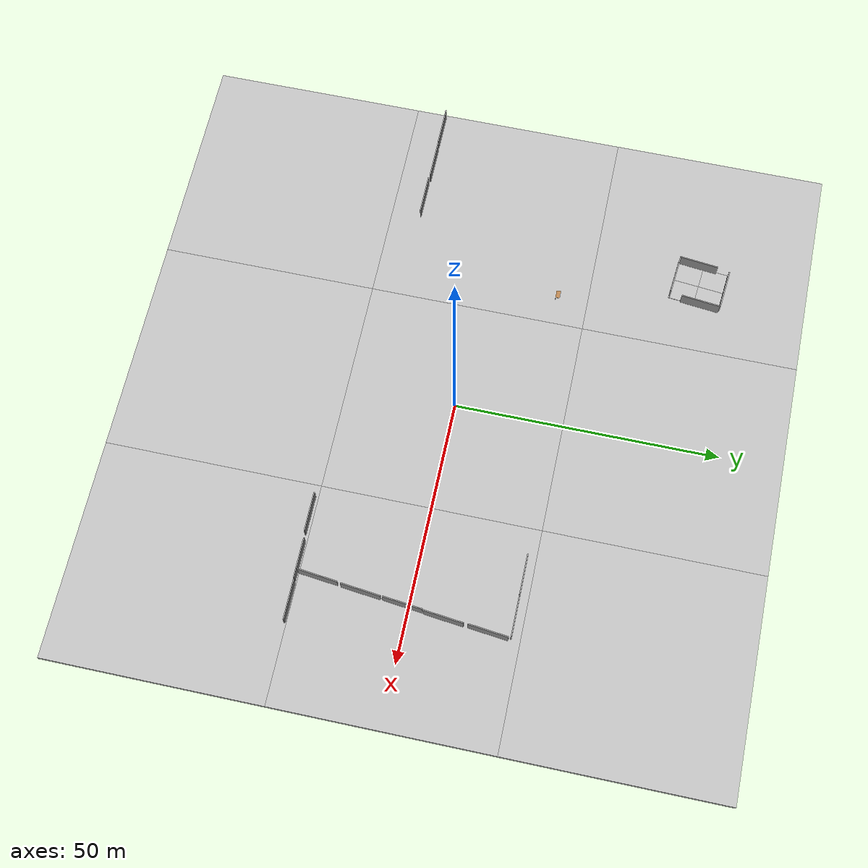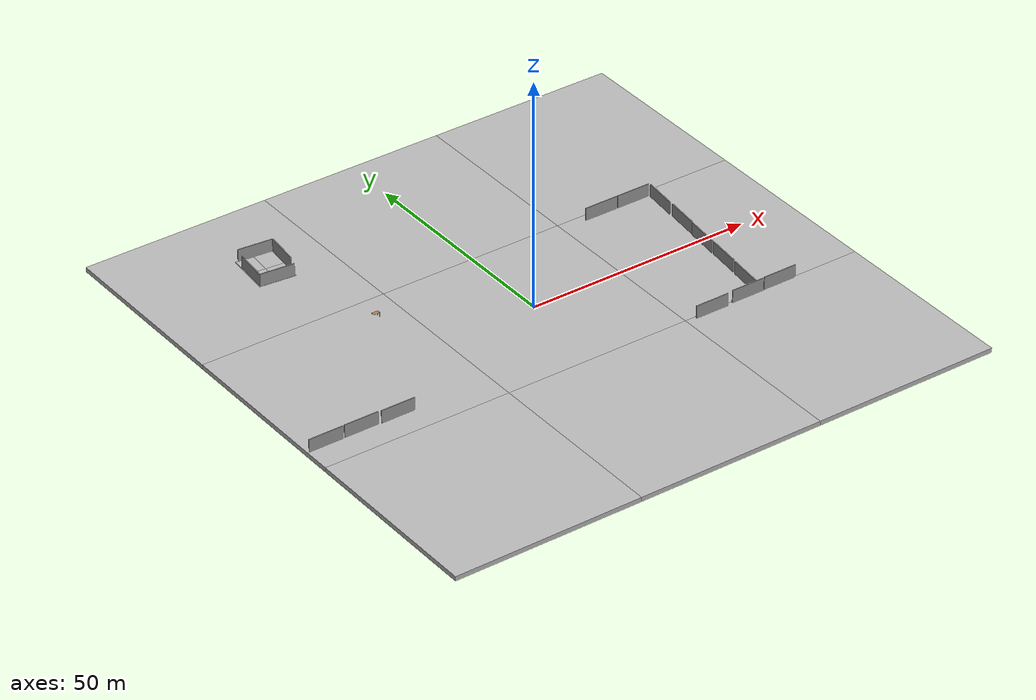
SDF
<sdf version="1.7">
 <world name="default">
  <light name="sun" type="directional">
   <pose>0 0 10 0 -0 0</pose>
   <diffuse>0.8 0.8 0.8 1</diffuse>
   <specular>0.2 0.2 0.2 1</specular>
   <attenuation>
    <range>1000</range>
    <constant>0.9</constant>
    <linear>0.01</linear>
    <quadratic>0.001</quadratic>
   </attenuation>
   <direction>-0.5 0.1 -0.9</direction>
   <spot><inner_angle>0</inner_angle><outer_angle>0</outer_angle><falloff>0</falloff></spot>
  </light>
  <plugin name="map" filename="libStaticMapPlugin.so">
   <center>30.288356 -97.736286</center>
   <world_size>100</world_size>
   <map_type>satellite</map_type>
   <api_key>AIzaSyDM2DxxucjLT2ng2_hZHQEQ3I_ZNa7ci1Q</api_key>
   <use_cache>0</use_cache>
  </plugin>
  <gravity>0 0 -9.8</gravity>
  <magnetic_field>6e-06 2.3e-05 -4.2e-05</magnetic_field>
  <atmosphere type="adiabatic"/>
  <physics type="ode">
   <max_step_size>0.001</max_step_size>
   <real_time_factor>1</real_time_factor>
   <real_time_update_rate>1000</real_time_update_rate>
  </physics>
  <scene><ambient>0.4 0.4 0.4 1</ambient><background>0.7 0.7 0.7 1</background><shadows>1</shadows></scene>
  <spherical_coordinates>
   <surface_model>EARTH_WGS84</surface_model>
   <latitude_deg>0</latitude_deg>
   <longitude_deg>0</longitude_deg>
   <elevation>0</elevation>
   <heading_deg>0</heading_deg>
  </spherical_coordinates>
  <model name="map_satellite_30.288356_-97.736286_100_100">
   <static>1</static>
   <link name="link">
    <collision name="collision">
     <pose>0 0 -0.5 0 -0 0</pose>
     <geometry><box><size>123.756 123.756 1</size></box></geometry>
    </collision>
    <visual name="visual0_0">
     <pose>-41.252 41.252 -0.5 0 -0 1.5708</pose>
     <geometry><box><size>41.252 41.252 1</size></box></geometry>
     <material>
      <script>
       <uri>model://map_satellite_30.288356_-97.736286_100_100/materials/scripts</uri>
       <uri>model://map_satellite_30.288356_-97.736286_100_100/materials/textures</uri>
       <name>map_satellite_30.288356_-97.736286_100_100/0_0</name>
      </script>
     </material>
    </visual>
    <visual name="visual0_1">
     <pose>0 41.252 -0.5 0 -0 1.5708</pose>
     <geometry><box><size>41.252 41.252 1</size></box></geometry>
     <material>
      <script>
       <uri>model://map_satellite_30.288356_-97.736286_100_100/materials/scripts</uri>
       <uri>model://map_satellite_30.288356_-97.736286_100_100/materials/textures</uri>
       <name>map_satellite_30.288356_-97.736286_100_100/0_1</name>
      </script>
     </material>
    </visual>
    <visual name="visual0_2">
     <pose>41.252 41.252 -0.5 0 -0 1.5708</pose>
     <geometry><box><size>41.252 41.252 1</size></box></geometry>
     <material>
      <script>
       <uri>model://map_satellite_30.288356_-97.736286_100_100/materials/scripts</uri>
       <uri>model://map_satellite_30.288356_-97.736286_100_100/materials/textures</uri>
       <name>map_satellite_30.288356_-97.736286_100_100/0_2</name>
      </script>
     </material>
    </visual>
    <visual name="visual1_0">
     <pose>-41.252 0 -0.5 0 -0 1.5708</pose>
     <geometry><box><size>41.252 41.252 1</size></box></geometry>
     <material>
      <script>
       <uri>model://map_satellite_30.288356_-97.736286_100_100/materials/scripts</uri>
       <uri>model://map_satellite_30.288356_-97.736286_100_100/materials/textures</uri>
       <name>map_satellite_30.288356_-97.736286_100_100/1_0</name>
      </script>
     </material>
    </visual>
    <visual name="visual1_1">
     <pose>0 0 -0.5 0 -0 1.5708</pose>
     <geometry><box><size>41.252 41.252 1</size></box></geometry>
     <material>
      <script>
       <uri>model://map_satellite_30.288356_-97.736286_100_100/materials/scripts</uri>
       <uri>model://map_satellite_30.288356_-97.736286_100_100/materials/textures</uri>
       <name>map_satellite_30.288356_-97.736286_100_100/1_1</name>
      </script>
     </material>
    </visual>
    <visual name="visual1_2">
     <pose>41.252 0 -0.5 0 -0 1.5708</pose>
     <geometry><box><size>41.252 41.252 1</size></box></geometry>
     <material>
      <script>
       <uri>model://map_satellite_30.288356_-97.736286_100_100/materials/scripts</uri>
       <uri>model://map_satellite_30.288356_-97.736286_100_100/materials/textures</uri>
       <name>map_satellite_30.288356_-97.736286_100_100/1_2</name>
      </script>
     </material>
    </visual>
    <visual name="visual2_0">
     <pose>-41.252 -41.252 -0.5 0 -0 1.5708</pose>
     <geometry><box><size>41.252 41.252 1</size></box></geometry>
     <material>
      <script>
       <uri>model://map_satellite_30.288356_-97.736286_100_100/materials/scripts</uri>
       <uri>model://map_satellite_30.288356_-97.736286_100_100/materials/textures</uri>
       <name>map_satellite_30.288356_-97.736286_100_100/2_0</name>
      </script>
     </material>
    </visual>
    <visual name="visual2_1">
     <pose>0 -41.252 -0.5 0 -0 1.5708</pose>
     <geometry><box><size>41.252 41.252 1</size></box></geometry>
     <material>
      <script>
       <uri>model://map_satellite_30.288356_-97.736286_100_100/materials/scripts</uri>
       <uri>model://map_satellite_30.288356_-97.736286_100_100/materials/textures</uri>
       <name>map_satellite_30.288356_-97.736286_100_100/2_1</name>
      </script>
     </material>
    </visual>
    <visual name="visual2_2">
     <pose>41.252 -41.252 -0.5 0 -0 1.5708</pose>
     <geometry><box><size>41.252 41.252 1</size></box></geometry>
     <material>
      <script>
       <uri>model://map_satellite_30.288356_-97.736286_100_100/materials/scripts</uri>
       <uri>model://map_satellite_30.288356_-97.736286_100_100/materials/textures</uri>
       <name>map_satellite_30.288356_-97.736286_100_100/2_2</name>
      </script>
     </material>
    </visual>
   </link>
  </model>
  <model name="table">
   <static>1</static>
   <link name="link">
    <collision name="surface">
     <pose>0 0 1 0 -0 0</pose>
     <geometry><box><size>1.5 0.8 0.03</size></box></geometry>
     <surface><friction><ode><mu>0.6</mu><mu2>0.6</mu2></ode></friction></surface>
    </collision>
    <visual name="visual1">
     <pose>0 0 1 0 -0 0</pose>
     <geometry><box><size>1.5 0.8 0.03</size></box></geometry>
     <material>
      <script><uri>file://media/materials/scripts/gazebo.material</uri><name>Gazebo/Wood</name></script>
     </material>
    </visual>
    <collision name="front_left_leg">
     <pose>0.68 0.38 0.5 0 -0 0</pose>
     <geometry><cylinder><radius>0.02</radius><length>1</length></cylinder></geometry>
    </collision>
    <visual name="front_left_leg">
     <pose>0.68 0.38 0.5 0 -0 0</pose>
     <geometry><cylinder><radius>0.02</radius><length>1</length></cylinder></geometry>
     <material>
      <script><uri>file://media/materials/scripts/gazebo.material</uri><name>Gazebo/Grey</name></script>
     </material>
    </visual>
    <collision name="front_right_leg">
     <pose>0.68 -0.38 0.5 0 -0 0</pose>
     <geometry><cylinder><radius>0.02</radius><length>1</length></cylinder></geometry>
    </collision>
    <visual name="front_right_leg">
     <pose>0.68 -0.38 0.5 0 -0 0</pose>
     <geometry><cylinder><radius>0.02</radius><length>1</length></cylinder></geometry>
     <material>
      <script><uri>file://media/materials/scripts/gazebo.material</uri><name>Gazebo/Grey</name></script>
     </material>
    </visual>
    <collision name="back_right_leg">
     <pose>-0.68 -0.38 0.5 0 -0 0</pose>
     <geometry><cylinder><radius>0.02</radius><length>1</length></cylinder></geometry>
    </collision>
    <visual name="back_right_leg">
     <pose>-0.68 -0.38 0.5 0 -0 0</pose>
     <geometry><cylinder><radius>0.02</radius><length>1</length></cylinder></geometry>
     <material>
      <script><uri>file://media/materials/scripts/gazebo.material</uri><name>Gazebo/Grey</name></script>
     </material>
    </visual>
    <collision name="back_left_leg">
     <pose>-0.68 0.38 0.5 0 -0 0</pose>
     <geometry><cylinder><radius>0.02</radius><length>1</length></cylinder></geometry>
    </collision>
    <visual name="back_left_leg">
     <pose>-0.68 0.38 0.5 0 -0 0</pose>
     <geometry><cylinder><radius>0.02</radius><length>1</length></cylinder></geometry>
     <material>
      <script><uri>file://media/materials/scripts/gazebo.material</uri><name>Gazebo/Grey</name></script>
     </material>
    </visual>
   </link>
   <pose>-26.3583 14.8403 0 0 -0 0</pose>
  </model>
  <model name="mud_box">
   <static>1</static>
   <link name="link">
    <collision name="collision"><geometry><box><size>8 10 0.2</size></box></geometry></collision>
    <visual name="visual_1">
     <pose>-2 2.5 0 0 -0 0</pose>
     <cast_shadows>0</cast_shadows>
     <geometry><box><size>4 5 0.2</size></box></geometry>
     <material>
      <script>
       <uri>model://mud_box/materials/scripts</uri>
       <uri>model://mud_box/materials/textures</uri>
       <name>vrc/mud</name>
      </script>
     </material>
    </visual>
    <visual name="visual_2">
     <pose>2 2.5 0 0 -0 0</pose>
     <cast_shadows>0</cast_shadows>
     <geometry><box><size>4 5 0.2</size></box></geometry>
     <material>
      <script>
       <uri>model://mud_box/materials/scripts</uri>
       <uri>model://mud_box/materials/textures</uri>
       <name>vrc/mud</name>
      </script>
     </material>
    </visual>
    <visual name="visual_3">
     <pose>2 -2.5 0 0 -0 0</pose>
     <cast_shadows>0</cast_shadows>
     <geometry><box><size>4 5 0.2</size></box></geometry>
     <material>
      <script>
       <uri>model://mud_box/materials/scripts</uri>
       <uri>model://mud_box/materials/textures</uri>
       <name>vrc/mud</name>
      </script>
     </material>
    </visual>
    <visual name="visual_4">
     <pose>-2 -2.5 0 0 -0 0</pose>
     <cast_shadows>0</cast_shadows>
     <geometry><box><size>4 5 0.2</size></box></geometry>
     <material>
      <script>
       <uri>model://mud_box/materials/scripts</uri>
       <uri>model://mud_box/materials/textures</uri>
       <name>vrc/mud</name>
      </script>
     </material>
    </visual>
   </link>
   <pose>-34.0766 41.0684 0 0 0 -0.096515</pose>
  </model>
  <model name="grey_wall">
   <static>1</static>
   <link name="link">
    <pose>0 0 1.4 0 -0 0</pose>
    <collision name="collision"><geometry><box><size>7.5 0.2 2.8</size></box></geometry></collision>
    <visual name="visual">
     <cast_shadows>0</cast_shadows>
     <geometry><box><size>7.5 0.2 2.8</size></box></geometry>
     <material>
      <script>
       <uri>model://grey_wall/materials/scripts</uri>
       <uri>model://grey_wall/materials/textures</uri>
       <name>vrc/grey_wall</name>
      </script>
     </material>
    </visual>
   </link>
   <pose>-33.2734 45.9746 -0 0 0 -0.094658</pose>
  </model>
  <model name="grey_wall_clone">
   <static>1</static>
   <link name="link">
    <pose>0 0 1.4 0 -0 0</pose>
    <collision name="collision"><geometry><box><size>7.5 0.2 2.8</size></box></geometry></collision>
    <visual name="visual">
     <cast_shadows>0</cast_shadows>
     <geometry><box><size>7.5 0.2 2.8</size></box></geometry>
     <material>
      <script>
       <uri>model://grey_wall/materials/scripts</uri>
       <uri>model://grey_wall/materials/textures</uri>
       <name>vrc/grey_wall</name>
      </script>
     </material>
    </visual>
   </link>
   <pose>-34.5847 36.2558 -0 0 0 -0.094658</pose>
  </model>
  <model name="grey_wall_clone_0">
   <static>1</static>
   <link name="link">
    <pose>0 0 1.4 0 -0 0</pose>
    <collision name="collision"><geometry><box><size>7.5 0.2 2.8</size></box></geometry></collision>
    <visual name="visual">
     <cast_shadows>0</cast_shadows>
     <geometry><box><size>7.5 0.2 2.8</size></box></geometry>
     <material>
      <script>
       <uri>model://grey_wall/materials/scripts</uri>
       <uri>model://grey_wall/materials/textures</uri>
       <name>vrc/grey_wall</name>
      </script>
     </material>
    </visual>
   </link>
   <pose>-29.8072 41.8146 0 0 -0 1.46354</pose>
  </model>
  <model name="grey_wall_clone_0_clone">
   <static>1</static>
   <link name="link">
    <pose>0 0 1.4 0 -0 0</pose>
    <collision name="collision"><geometry><box><size>7.5 0.2 2.8</size></box></geometry></collision>
    <visual name="visual">
     <cast_shadows>0</cast_shadows>
     <geometry><box><size>7.5 0.2 2.8</size></box></geometry>
     <material>
      <script>
       <uri>model://grey_wall/materials/scripts</uri>
       <uri>model://grey_wall/materials/textures</uri>
       <name>vrc/grey_wall</name>
      </script>
     </material>
    </visual>
   </link>
   <pose>-37.9702 40.2715 0 0 -0 1.46354</pose>
  </model>
  <model name="map_satellite_30.288356_-97.736286_100_100_0">
   <static>1</static>
   <link name="link">
    <collision name="collision">
     <pose>0 0 -0.5 0 -0 0</pose>
     <geometry><box><size>123.756 123.756 1</size></box></geometry>
    </collision>
    <visual name="visual0_0">
     <pose>-41.252 41.252 -0.5 0 -0 1.5708</pose>
     <geometry><box><size>41.252 41.252 1</size></box></geometry>
     <material>
      <script>
       <uri>model://map_satellite_30.288356_-97.736286_100_100/materials/scripts</uri>
       <uri>model://map_satellite_30.288356_-97.736286_100_100/materials/textures</uri>
       <name>map_satellite_30.288356_-97.736286_100_100/0_0</name>
      </script>
     </material>
    </visual>
    <visual name="visual0_1">
     <pose>0 41.252 -0.5 0 -0 1.5708</pose>
     <geometry><box><size>41.252 41.252 1</size></box></geometry>
     <material>
      <script>
       <uri>model://map_satellite_30.288356_-97.736286_100_100/materials/scripts</uri>
       <uri>model://map_satellite_30.288356_-97.736286_100_100/materials/textures</uri>
       <name>map_satellite_30.288356_-97.736286_100_100/0_1</name>
      </script>
     </material>
    </visual>
    <visual name="visual0_2">
     <pose>41.252 41.252 -0.5 0 -0 1.5708</pose>
     <geometry><box><size>41.252 41.252 1</size></box></geometry>
     <material>
      <script>
       <uri>model://map_satellite_30.288356_-97.736286_100_100/materials/scripts</uri>
       <uri>model://map_satellite_30.288356_-97.736286_100_100/materials/textures</uri>
       <name>map_satellite_30.288356_-97.736286_100_100/0_2</name>
      </script>
     </material>
    </visual>
    <visual name="visual1_0">
     <pose>-41.252 0 -0.5 0 -0 1.5708</pose>
     <geometry><box><size>41.252 41.252 1</size></box></geometry>
     <material>
      <script>
       <uri>model://map_satellite_30.288356_-97.736286_100_100/materials/scripts</uri>
       <uri>model://map_satellite_30.288356_-97.736286_100_100/materials/textures</uri>
       <name>map_satellite_30.288356_-97.736286_100_100/1_0</name>
      </script>
     </material>
    </visual>
    <visual name="visual1_1">
     <pose>0 0 -0.5 0 -0 1.5708</pose>
     <geometry><box><size>41.252 41.252 1</size></box></geometry>
     <material>
      <script>
       <uri>model://map_satellite_30.288356_-97.736286_100_100/materials/scripts</uri>
       <uri>model://map_satellite_30.288356_-97.736286_100_100/materials/textures</uri>
       <name>map_satellite_30.288356_-97.736286_100_100/1_1</name>
      </script>
     </material>
    </visual>
    <visual name="visual1_2">
     <pose>41.252 0 -0.5 0 -0 1.5708</pose>
     <geometry><box><size>41.252 41.252 1</size></box></geometry>
     <material>
      <script>
       <uri>model://map_satellite_30.288356_-97.736286_100_100/materials/scripts</uri>
       <uri>model://map_satellite_30.288356_-97.736286_100_100/materials/textures</uri>
       <name>map_satellite_30.288356_-97.736286_100_100/1_2</name>
      </script>
     </material>
    </visual>
    <visual name="visual2_0">
     <pose>-41.252 -41.252 -0.5 0 -0 1.5708</pose>
     <geometry><box><size>41.252 41.252 1</size></box></geometry>
     <material>
      <script>
       <uri>model://map_satellite_30.288356_-97.736286_100_100/materials/scripts</uri>
       <uri>model://map_satellite_30.288356_-97.736286_100_100/materials/textures</uri>
       <name>map_satellite_30.288356_-97.736286_100_100/2_0</name>
      </script>
     </material>
    </visual>
    <visual name="visual2_1">
     <pose>0 -41.252 -0.5 0 -0 1.5708</pose>
     <geometry><box><size>41.252 41.252 1</size></box></geometry>
     <material>
      <script>
       <uri>model://map_satellite_30.288356_-97.736286_100_100/materials/scripts</uri>
       <uri>model://map_satellite_30.288356_-97.736286_100_100/materials/textures</uri>
       <name>map_satellite_30.288356_-97.736286_100_100/2_1</name>
      </script>
     </material>
    </visual>
    <visual name="visual2_2">
     <pose>41.252 -41.252 -0.5 0 -0 1.5708</pose>
     <geometry><box><size>41.252 41.252 1</size></box></geometry>
     <material>
      <script>
       <uri>model://map_satellite_30.288356_-97.736286_100_100/materials/scripts</uri>
       <uri>model://map_satellite_30.288356_-97.736286_100_100/materials/textures</uri>
       <name>map_satellite_30.288356_-97.736286_100_100/2_2</name>
      </script>
     </material>
    </visual>
   </link>
  </model>
  <model name="map_satellite_30.288356_-97.736286_100_100_1">
   <static>1</static>
   <link name="link">
    <collision name="collision">
     <pose>0 0 -0.5 0 -0 0</pose>
     <geometry><box><size>123.756 123.756 1</size></box></geometry>
    </collision>
    <visual name="visual0_0">
     <pose>-41.252 41.252 -0.5 0 -0 1.5708</pose>
     <geometry><box><size>41.252 41.252 1</size></box></geometry>
     <material>
      <script>
       <uri>model://map_satellite_30.288356_-97.736286_100_100/materials/scripts</uri>
       <uri>model://map_satellite_30.288356_-97.736286_100_100/materials/textures</uri>
       <name>map_satellite_30.288356_-97.736286_100_100/0_0</name>
      </script>
     </material>
    </visual>
    <visual name="visual0_1">
     <pose>0 41.252 -0.5 0 -0 1.5708</pose>
     <geometry><box><size>41.252 41.252 1</size></box></geometry>
     <material>
      <script>
       <uri>model://map_satellite_30.288356_-97.736286_100_100/materials/scripts</uri>
       <uri>model://map_satellite_30.288356_-97.736286_100_100/materials/textures</uri>
       <name>map_satellite_30.288356_-97.736286_100_100/0_1</name>
      </script>
     </material>
    </visual>
    <visual name="visual0_2">
     <pose>41.252 41.252 -0.5 0 -0 1.5708</pose>
     <geometry><box><size>41.252 41.252 1</size></box></geometry>
     <material>
      <script>
       <uri>model://map_satellite_30.288356_-97.736286_100_100/materials/scripts</uri>
       <uri>model://map_satellite_30.288356_-97.736286_100_100/materials/textures</uri>
       <name>map_satellite_30.288356_-97.736286_100_100/0_2</name>
      </script>
     </material>
    </visual>
    <visual name="visual1_0">
     <pose>-41.252 0 -0.5 0 -0 1.5708</pose>
     <geometry><box><size>41.252 41.252 1</size></box></geometry>
     <material>
      <script>
       <uri>model://map_satellite_30.288356_-97.736286_100_100/materials/scripts</uri>
       <uri>model://map_satellite_30.288356_-97.736286_100_100/materials/textures</uri>
       <name>map_satellite_30.288356_-97.736286_100_100/1_0</name>
      </script>
     </material>
    </visual>
    <visual name="visual1_1">
     <pose>0 0 -0.5 0 -0 1.5708</pose>
     <geometry><box><size>41.252 41.252 1</size></box></geometry>
     <material>
      <script>
       <uri>model://map_satellite_30.288356_-97.736286_100_100/materials/scripts</uri>
       <uri>model://map_satellite_30.288356_-97.736286_100_100/materials/textures</uri>
       <name>map_satellite_30.288356_-97.736286_100_100/1_1</name>
      </script>
     </material>
    </visual>
    <visual name="visual1_2">
     <pose>41.252 0 -0.5 0 -0 1.5708</pose>
     <geometry><box><size>41.252 41.252 1</size></box></geometry>
     <material>
      <script>
       <uri>model://map_satellite_30.288356_-97.736286_100_100/materials/scripts</uri>
       <uri>model://map_satellite_30.288356_-97.736286_100_100/materials/textures</uri>
       <name>map_satellite_30.288356_-97.736286_100_100/1_2</name>
      </script>
     </material>
    </visual>
    <visual name="visual2_0">
     <pose>-41.252 -41.252 -0.5 0 -0 1.5708</pose>
     <geometry><box><size>41.252 41.252 1</size></box></geometry>
     <material>
      <script>
       <uri>model://map_satellite_30.288356_-97.736286_100_100/materials/scripts</uri>
       <uri>model://map_satellite_30.288356_-97.736286_100_100/materials/textures</uri>
       <name>map_satellite_30.288356_-97.736286_100_100/2_0</name>
      </script>
     </material>
    </visual>
    <visual name="visual2_1">
     <pose>0 -41.252 -0.5 0 -0 1.5708</pose>
     <geometry><box><size>41.252 41.252 1</size></box></geometry>
     <material>
      <script>
       <uri>model://map_satellite_30.288356_-97.736286_100_100/materials/scripts</uri>
       <uri>model://map_satellite_30.288356_-97.736286_100_100/materials/textures</uri>
       <name>map_satellite_30.288356_-97.736286_100_100/2_1</name>
      </script>
     </material>
    </visual>
    <visual name="visual2_2">
     <pose>41.252 -41.252 -0.5 0 -0 1.5708</pose>
     <geometry><box><size>41.252 41.252 1</size></box></geometry>
     <material>
      <script>
       <uri>model://map_satellite_30.288356_-97.736286_100_100/materials/scripts</uri>
       <uri>model://map_satellite_30.288356_-97.736286_100_100/materials/textures</uri>
       <name>map_satellite_30.288356_-97.736286_100_100/2_2</name>
      </script>
     </material>
    </visual>
   </link>
  </model>
  <model name="grey_wall_0">
   <static>1</static>
   <link name="link">
    <pose>0 0 1.4 0 -0 0</pose>
    <collision name="collision"><geometry><box><size>7.5 0.2 2.8</size></box></geometry></collision>
    <visual name="visual">
     <cast_shadows>0</cast_shadows>
     <geometry><box><size>7.5 0.2 2.8</size></box></geometry>
     <material>
      <script>
       <uri>model://grey_wall/materials/scripts</uri>
       <uri>model://grey_wall/materials/textures</uri>
       <name>vrc/grey_wall</name>
      </script>
     </material>
    </visual>
   </link>
   <pose>26.6153 -21.1845 0 0 -0 0</pose>
  </model>
  <model name="grey_wall_0_clone">
   <static>1</static>
   <link name="link">
    <pose>0 0 1.4 0 -0 0</pose>
    <collision name="collision"><geometry><box><size>7.5 0.2 2.8</size></box></geometry></collision>
    <visual name="visual">
     <cast_shadows>0</cast_shadows>
     <geometry><box><size>7.5 0.2 2.8</size></box></geometry>
     <material>
      <script>
       <uri>model://grey_wall/materials/scripts</uri>
       <uri>model://grey_wall/materials/textures</uri>
       <name>vrc/grey_wall</name>
      </script>
     </material>
    </visual>
   </link>
   <pose>35.384 -20.9337 0 0 -0 0</pose>
  </model>
  <model name="grey_wall_0_clone_0">
   <static>1</static>
   <link name="link">
    <pose>0 0 1.4 0 -0 0</pose>
    <collision name="collision"><geometry><box><size>7.5 0.2 2.8</size></box></geometry></collision>
    <visual name="visual">
     <cast_shadows>0</cast_shadows>
     <geometry><box><size>7.5 0.2 2.8</size></box></geometry>
     <material>
      <script>
       <uri>model://grey_wall/materials/scripts</uri>
       <uri>model://grey_wall/materials/textures</uri>
       <name>vrc/grey_wall</name>
      </script>
     </material>
    </visual>
   </link>
   <pose>43.1466 -20.8429 0 0 -0 0</pose>
  </model>
  <model name="grey_wall_0_clone_2">
   <static>1</static>
   <link name="link">
    <pose>0 0 1.4 0 -0 0</pose>
    <collision name="collision"><geometry><box><size>7.5 0.2 2.8</size></box></geometry></collision>
    <visual name="visual">
     <cast_shadows>0</cast_shadows>
     <geometry><box><size>7.5 0.2 2.8</size></box></geometry>
     <material>
      <script>
       <uri>model://grey_wall/materials/scripts</uri>
       <uri>model://grey_wall/materials/textures</uri>
       <name>vrc/grey_wall</name>
      </script>
     </material>
    </visual>
   </link>
   <pose>-57.7373 -14.7636 0 0 -0 0</pose>
  </model>
  <model name="grey_wall_0_clone_1">
   <static>1</static>
   <link name="link">
    <pose>0 0 1.4 0 -0 0</pose>
    <collision name="collision"><geometry><box><size>7.5 0.2 2.8</size></box></geometry></collision>
    <visual name="visual">
     <cast_shadows>0</cast_shadows>
     <geometry><box><size>7.5 0.2 2.8</size></box></geometry>
     <material>
      <script>
       <uri>model://grey_wall/materials/scripts</uri>
       <uri>model://grey_wall/materials/textures</uri>
       <name>vrc/grey_wall</name>
      </script>
     </material>
    </visual>
   </link>
   <pose>-49.8363 -14.7151 0 0 -0 0</pose>
  </model>
  <model name="grey_wall_0_clone_3">
   <static>1</static>
   <link name="link">
    <pose>0 0 1.4 0 -0 0</pose>
    <collision name="collision"><geometry><box><size>7.5 0.2 2.8</size></box></geometry></collision>
    <visual name="visual">
     <cast_shadows>0</cast_shadows>
     <geometry><box><size>7.5 0.2 2.8</size></box></geometry>
     <material>
      <script>
       <uri>model://grey_wall/materials/scripts</uri>
       <uri>model://grey_wall/materials/textures</uri>
       <name>vrc/grey_wall</name>
      </script>
     </material>
    </visual>
   </link>
   <pose>-41.7028 -14.8811 0 0 -0 0</pose>
  </model>
  <model name="grey_wall_0_clone_4">
   <static>1</static>
   <link name="link">
    <pose>0 0 1.4 0 -0 0</pose>
    <collision name="collision"><geometry><box><size>7.5 0.2 2.8</size></box></geometry></collision>
    <visual name="visual">
     <cast_shadows>0</cast_shadows>
     <geometry><box><size>7.5 0.2 2.8</size></box></geometry>
     <material>
      <script>
       <uri>model://grey_wall/materials/scripts</uri>
       <uri>model://grey_wall/materials/textures</uri>
       <name>vrc/grey_wall</name>
      </script>
     </material>
    </visual>
   </link>
   <pose>37.8398 -16.9382 0 0 0 -1.67995</pose>
  </model>
  <model name="grey_wall_0_clone_4_clone">
   <static>1</static>
   <link name="link">
    <pose>0 0 1.4 0 -0 0</pose>
    <collision name="collision"><geometry><box><size>7.5 0.2 2.8</size></box></geometry></collision>
    <visual name="visual">
     <cast_shadows>0</cast_shadows>
     <geometry><box><size>7.5 0.2 2.8</size></box></geometry>
     <material>
      <script>
       <uri>model://grey_wall/materials/scripts</uri>
       <uri>model://grey_wall/materials/textures</uri>
       <name>vrc/grey_wall</name>
      </script>
     </material>
    </visual>
   </link>
   <pose>38.7875 -8.85145 0 0 0 -1.67995</pose>
  </model>
  <model name="grey_wall_0_clone_4_clone_0">
   <static>1</static>
   <link name="link">
    <pose>0 0 1.4 0 -0 0</pose>
    <collision name="collision"><geometry><box><size>7.5 0.2 2.8</size></box></geometry></collision>
    <visual name="visual">
     <cast_shadows>0</cast_shadows>
     <geometry><box><size>7.5 0.2 2.8</size></box></geometry>
     <material>
      <script>
       <uri>model://grey_wall/materials/scripts</uri>
       <uri>model://grey_wall/materials/textures</uri>
       <name>vrc/grey_wall</name>
      </script>
     </material>
    </visual>
   </link>
   <pose>39.5829 -1.05049 0 0 0 -1.67995</pose>
  </model>
  <model name="grey_wall_0_clone_4_clone_1">
   <static>1</static>
   <link name="link">
    <pose>0 0 1.4 0 -0 0</pose>
    <collision name="collision"><geometry><box><size>7.5 0.2 2.8</size></box></geometry></collision>
    <visual name="visual">
     <cast_shadows>0</cast_shadows>
     <geometry><box><size>7.5 0.2 2.8</size></box></geometry>
     <material>
      <script>
       <uri>model://grey_wall/materials/scripts</uri>
       <uri>model://grey_wall/materials/textures</uri>
       <name>vrc/grey_wall</name>
      </script>
     </material>
    </visual>
   </link>
   <pose>40.5269 6.55717 0 0 0 -1.67995</pose>
  </model>
  <model name="grey_wall_0_clone_4_clone_2">
   <static>1</static>
   <link name="link">
    <pose>0 0 1.4 0 -0 0</pose>
    <collision name="collision"><geometry><box><size>7.5 0.2 2.8</size></box></geometry></collision>
    <visual name="visual">
     <cast_shadows>0</cast_shadows>
     <geometry><box><size>7.5 0.2 2.8</size></box></geometry>
     <material>
      <script>
       <uri>model://grey_wall/materials/scripts</uri>
       <uri>model://grey_wall/materials/textures</uri>
       <name>vrc/grey_wall</name>
      </script>
     </material>
    </visual>
   </link>
   <pose>41.3311 14.7751 0 0 0 -1.67995</pose>
  </model>
  <model name="grey_wall_0_clone_5">
   <static>1</static>
   <link name="link">
    <pose>0 0 1.4 0 -0 0</pose>
    <collision name="collision"><geometry><box><size>7.5 0.2 2.8</size></box></geometry></collision>
    <visual name="visual">
     <cast_shadows>0</cast_shadows>
     <geometry><box><size>7.5 0.2 2.8</size></box></geometry>
     <material>
      <script>
       <uri>model://grey_wall/materials/scripts</uri>
       <uri>model://grey_wall/materials/textures</uri>
       <name>vrc/grey_wall</name>
      </script>
     </material>
    </visual>
   </link>
   <pose>37.7621 18.9416 0 0 -0 0</pose>
  </model>
  <model name="grey_wall_0_clone_6">
   <static>1</static>
   <link name="link">
    <pose>0 0 1.4 0 -0 0</pose>
    <collision name="collision"><geometry><box><size>7.5 0.2 2.8</size></box></geometry></collision>
    <visual name="visual">
     <cast_shadows>0</cast_shadows>
     <geometry><box><size>7.5 0.2 2.8</size></box></geometry>
     <material>
      <script>
       <uri>model://grey_wall/materials/scripts</uri>
       <uri>model://grey_wall/materials/textures</uri>
       <name>vrc/grey_wall</name>
      </script>
     </material>
    </visual>
   </link>
   <pose>30.0165 18.9424 0 0 -0 0</pose>
  </model>
 </world>
</sdf>
